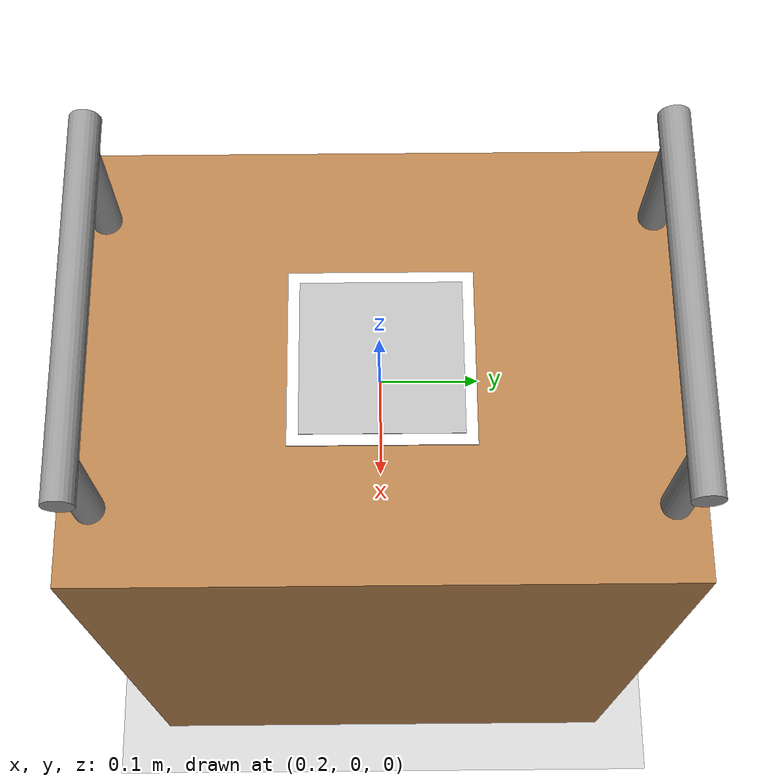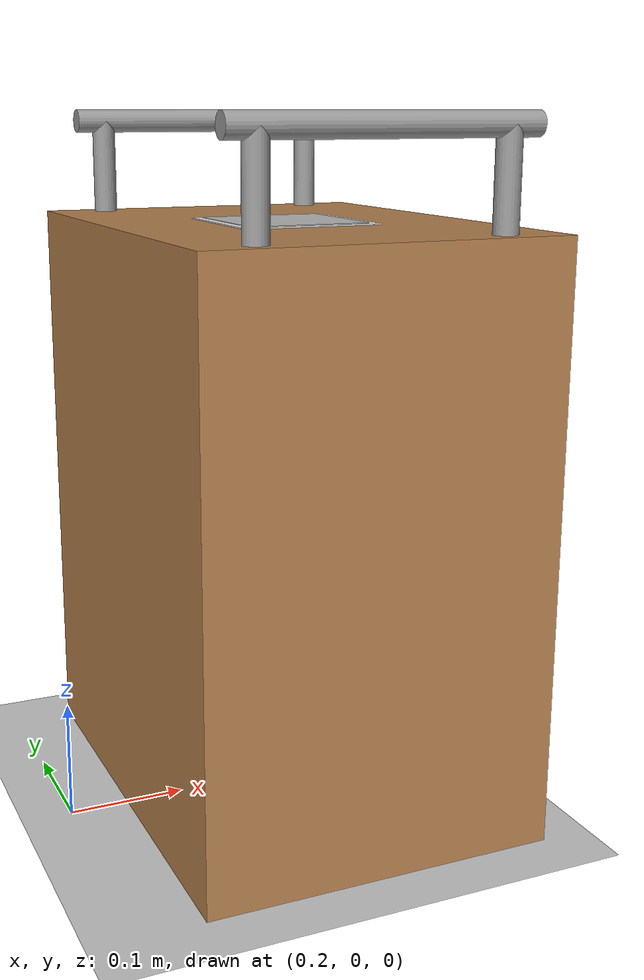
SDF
<?xml version="1.0" ?>
<sdf version="1.4">
  <world name="default">
    <physics type="ode">
      <gravity>0 0 -9.81</gravity>
      <ode>
        <solver>
          <type>quick</type>
          <iters>20</iters>
          <sor>1.0</sor>
        </solver>
        <constraints>
          <cfm>0.0</cfm>
          <erp>0.2</erp>
          <contact_max_correcting_vel>100.0</contact_max_correcting_vel>
          <contact_surface_layer>0.0</contact_surface_layer>
        </constraints>
      </ode>
      <real_time_update_rate>1000</real_time_update_rate>
      <max_step_size>0.001</max_step_size>
    </physics>
    <light type="directional" name="light1">
      <cast_shadows>true</cast_shadows>
      <pose>-2 0 4 0 0 0</pose>
      <diffuse>1.0 1.0 1.0 1</diffuse>
      <specular>0.1 0.1 0.1 1</specular>
      <attenuation>
        <range>20</range>
        <constant>0.9</constant>
        <linear>0.01</linear>
        <quadratic>0.001</quadratic>
      </attenuation>
      <direction>0.2 0.0 -1.0</direction>
    </light>
    <!-- A ground plane -->
    <include>
      <uri>model://ground_plane</uri>
    </include>

    <!-- staircase generated with steps_gazebo -->
    <include>
      <uri>model://box_with_handles</uri>
      <pose>0.4 0.0 0.0 0 0 0</pose>
      <static>false</static>
    </include>

    <gui fullscreen="0">
      <camera name="user_camera">
        <pose>1.152670 -0.041479 3.496780 0.000000 1.123640 3.132190</pose>
        <view_controller>orbit</view_controller>
      </camera>
    </gui>
  </world>
</sdf>

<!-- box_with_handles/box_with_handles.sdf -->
<sdf version='1.3'>
<model name='box_with_handles'>
      <static>1</static>
      <link name='box_with_handles'>
        <inertial>
          <pose>0.0 0.0 0.2 0.0 0.0 0.0</pose>
          <inertia>
            <ixx>1.0</ixx>
            <ixy>0.0</ixy>
            <ixz>0.0</ixz>
            <iyy>1.0</iyy>
            <iyz>0.0</iyz>
            <izz>1.0</izz>
          </inertia>
          <mass>2.0</mass>
        </inertial>
        <collision name='box'>
          <pose>0.0 0.0 0.25 0.0 0.0 0.0</pose>
          <geometry>
            <box>
              <size>0.3 0.4 0.5</size>
            </box>
          </geometry>
          <surface>
            <bounce/>
            <friction>
              <ode/>
            </friction>
            <contact>
              <ode/>
            </contact>
          </surface>
        </collision>
        <visual name='visual1'>
          <pose>0.0 0.0 0.25 0.0 0.0 0.0</pose>
          <geometry>
            <box>
              <size>0.3 0.4 0.5</size>
            </box>
          </geometry>
          <material>
            <script>
              <uri>file://media/materials/scripts/gazebo.material</uri>
              <name>Gazebo/Wood</name>
            </script>
          </material>
        </visual>
        <collision name='handle_left_1'>
          <pose>0.1 0.18 0.54 0.0 0.0 0.0</pose>
          <geometry>
            <cylinder>
              <radius>0.01</radius>
              <length>0.08</length>
            </cylinder>
          </geometry>
          <surface>
            <bounce/>
            <friction>
              <ode/>
            </friction>
            <contact>
              <ode/>
            </contact>
          </surface>
        </collision>
        <visual name='handle_left_1'>
          <pose>0.1 0.18 0.54 0.0 0.0 0.0</pose>
          <geometry>
            <cylinder>
              <radius>0.01</radius>
              <length>0.08</length>
            </cylinder>
          </geometry>
          <material>
            <script>
              <uri>file://media/materials/scripts/gazebo.material</uri>
              <name>Gazebo/Grey</name>
            </script>
          </material>
        </visual>
        <collision name='handle_left_2'>
          <pose>-0.1 0.18 0.54 0.0 0.0 0.0</pose>
          <geometry>
            <cylinder>
              <radius>0.01</radius>
              <length>0.08</length>
            </cylinder>
          </geometry>
          <surface>
            <bounce/>
            <friction>
              <ode/>
            </friction>
            <contact>
              <ode/>
            </contact>
          </surface>
        </collision>
        <visual name='handle_left_2'>
          <pose>-0.1 0.18 0.54 0.0 0.0 0.0</pose>
          <geometry>
            <cylinder>
              <radius>0.01</radius>
              <length>0.08</length>
            </cylinder>
          </geometry>
          <material>
            <script>
              <uri>file://media/materials/scripts/gazebo.material</uri>
              <name>Gazebo/Grey</name>
            </script>
          </material>
        </visual>
        <collision name='handle_left_3'>
          <pose>0.0 0.18 0.58 0.0 1.57 0.0</pose>
          <geometry>
            <cylinder>
              <radius>0.01</radius>
              <length>0.25</length>
            </cylinder>
          </geometry>
          <surface>
            <bounce/>
            <friction>
              <ode/>
            </friction>
            <contact>
              <ode/>
            </contact>
          </surface>
        </collision>
        <visual name='handle_left_3'>
          <pose>0.0 0.18 0.58 0.0 1.57 0.0</pose>
          <geometry>
            <cylinder>
              <radius>0.01</radius>
              <length>0.25</length>
            </cylinder>
          </geometry>
          <material>
            <script>
              <uri>file://media/materials/scripts/gazebo.material</uri>
              <name>Gazebo/Grey</name>
            </script>
          </material>
        </visual>
        <collision name='handle_left_1'>
          <pose>0.1 -0.18 0.54 0.0 0.0 0.0</pose>
          <geometry>
            <cylinder>
              <radius>0.01</radius>
              <length>0.08</length>
            </cylinder>
          </geometry>
          <surface>
            <bounce/>
            <friction>
              <ode/>
            </friction>
            <contact>
              <ode/>
            </contact>
          </surface>
        </collision>
        <visual name='handle_right_1'>
          <pose>0.1 -0.18 0.54 0.0 0.0 0.0</pose>
          <geometry>
            <cylinder>
              <radius>0.01</radius>
              <length>0.08</length>
            </cylinder>
          </geometry>
          <material>
            <script>
              <uri>file://media/materials/scripts/gazebo.material</uri>
              <name>Gazebo/Grey</name>
            </script>
          </material>
        </visual>
        <collision name='handle_right_2'>
          <pose>-0.1 -0.18 0.54 0.0 0.0 0.0</pose>
          <geometry>
            <cylinder>
              <radius>0.01</radius>
              <length>0.08</length>
            </cylinder>
          </geometry>
          <surface>
            <bounce/>
            <friction>
              <ode/>
            </friction>
            <contact>
              <ode/>
            </contact>
          </surface>
        </collision>
        <visual name='handle_right_2'>
          <pose>-0.1 -0.18 0.54 0.0 0.0 0.0</pose>
          <geometry>
            <cylinder>
              <radius>0.01</radius>
              <length>0.08</length>
            </cylinder>
          </geometry>
          <material>
            <script>
              <uri>file://media/materials/scripts/gazebo.material</uri>
              <name>Gazebo/Grey</name>
            </script>
          </material>
        </visual>
        <collision name='handle_right_3'>
          <pose>0.0 -0.18 0.58 0.0 1.57 0.0</pose>
          <geometry>
            <cylinder>
              <radius>0.01</radius>
              <length>0.25</length>
            </cylinder>
          </geometry>
          <surface>
            <bounce/>
            <friction>
              <ode/>
            </friction>
            <contact>
              <ode/>
            </contact>
          </surface>
        </collision>
        <visual name='handle_right_3'>
          <pose>0.0 -0.18 0.58 0.0 1.57 0.0</pose>
          <geometry>
            <cylinder>
              <radius>0.01</radius>
              <length>0.25</length>
            </cylinder>
          </geometry>
          <material>
            <script>
              <uri>file://media/materials/scripts/gazebo.material</uri>
              <name>Gazebo/Grey</name>
            </script>
          </material>
        </visual>
        <visual name='visual2'>
          <pose>0.0 0.0 0.5005 0.0 0.0 0.0</pose>
          <geometry>
            <box>
              <size>0.12 0.12 0.001</size>
            </box>
          </geometry>
          <material>
            <script>
              <uri>file://media/materials/scripts/gazebo.material</uri>
              <name>Gazebo/White</name>
            </script>
          </material>
        </visual>
        <visual name="visual3">
          <pose>0.0 0.0 0.501 0.0 0.0 1.57</pose>
          <geometry>
            <box>
              <size>0.105 0.105 0.001</size>
            </box>
          </geometry>
          <material>
            <script>
              <uri>model://box_with_handles/material/scripts</uri>
              <uri>model://box_with_handles/material/textures</uri>
              <name>Aruco/aruco_marker_original_582</name>
            </script>
          </material>
        </visual>
        <velocity_decay>
          <linear>0.000000</linear>
          <angular>0.000000</angular>
        </velocity_decay>
        <self_collide>0</self_collide>
        <kinematic>0</kinematic>
        <gravity>1</gravity>
      </link>
    </model>
</sdf>
